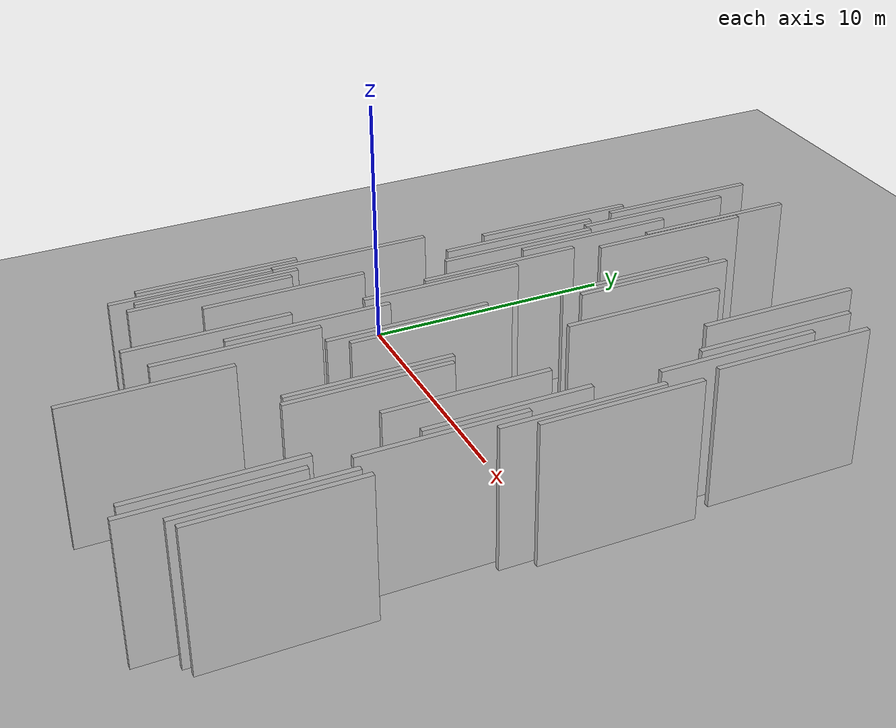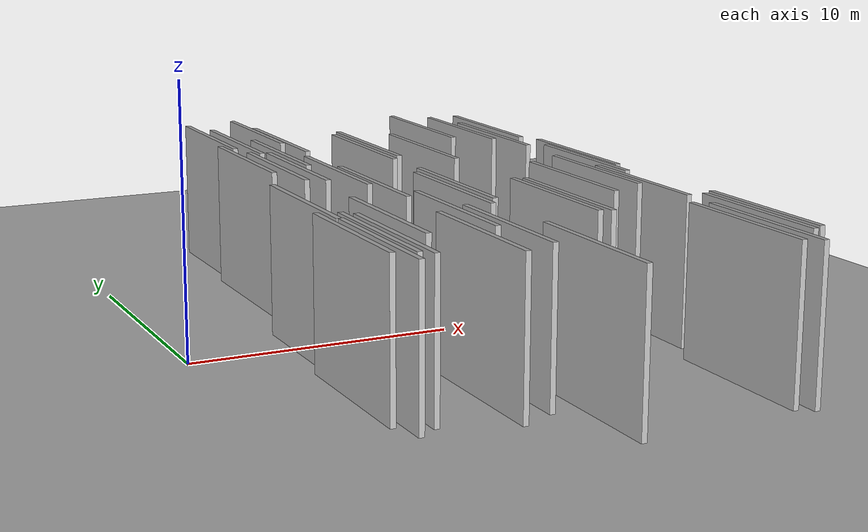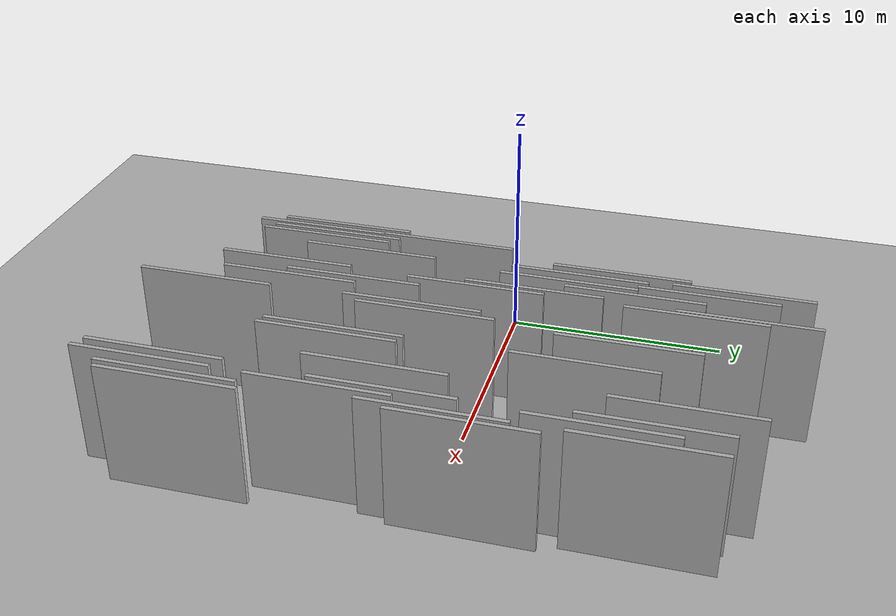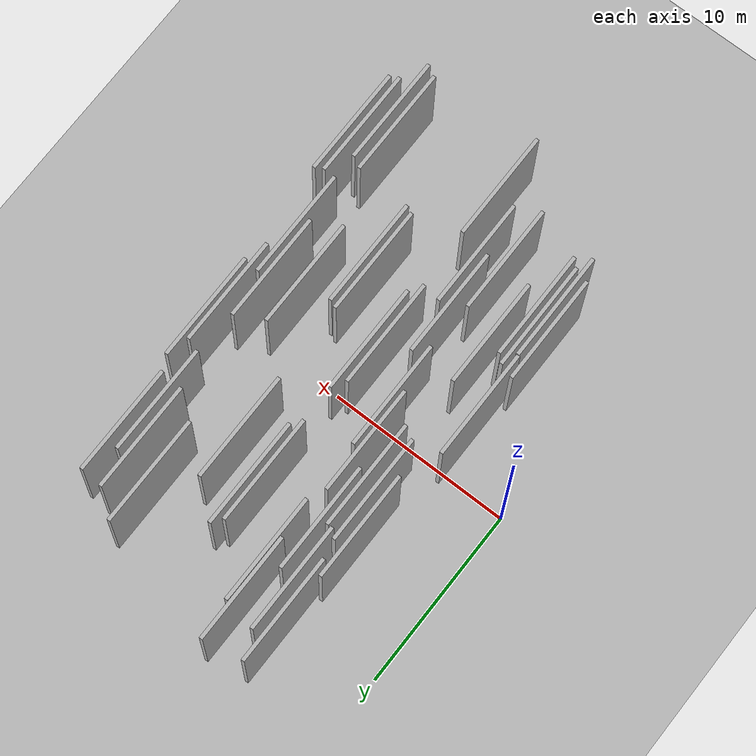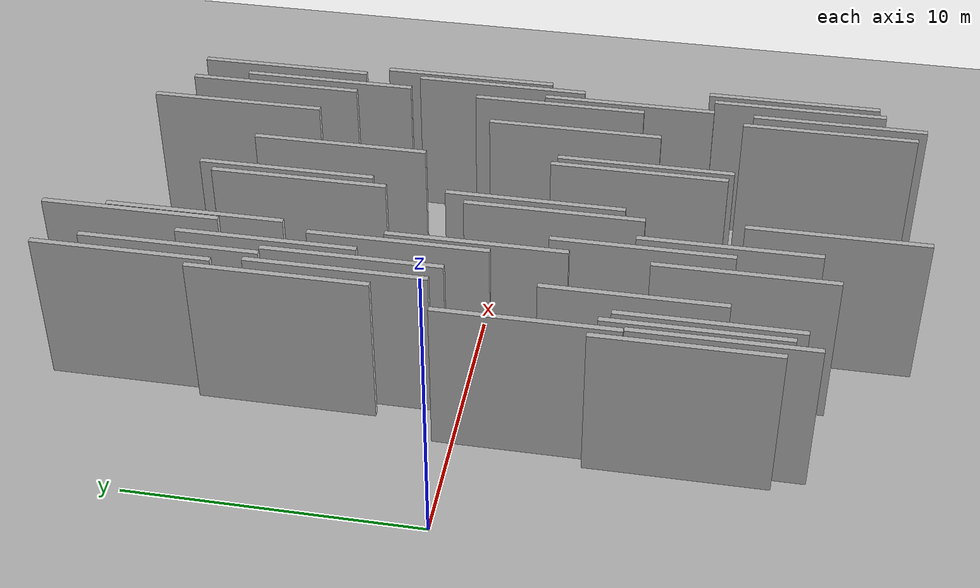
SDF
<?xml version="1.0" encoding="utf-8"?>

<sdf version="1.6">

   <world name="default">

      <gui fullscreen="0">

         <camera name="user_camera">

            <pose>-15 0 4.57585 0 0 0</pose>

            <view_controller>orbit</view_controller>

         </camera>

      </gui>

      <scene>

         <sky>

           <clouds>

             <speed>12</speed>

           </clouds>

         </sky>

         <ambient>0.4 0.4 0.4 1</ambient>

         <background>0.7 0.7 0.7 1</background>

         <shadows>1</shadows>

      </scene>

      <gravity>0 0 -9.8066</gravity>

      <magnetic_field>6e-06 2.3e-05 -4.2e-05</magnetic_field>

      <physics default="0" name="default_physics" type="ode">

         <ode>

            <solver>

               <type>quick</type>

               <iters>10</iters>

               <sor>1.0</sor>

               <use_dynamic_moi_rescaling>0</use_dynamic_moi_rescaling>

            </solver>

            <constraints>

               <cfm>0</cfm>

               <erp>0.2</erp>

               <contact_max_correcting_vel>100</contact_max_correcting_vel>

               <contact_surface_layer>0.001</contact_surface_layer>

            </constraints>

         </ode>

         <max_step_size>0.004</max_step_size>

         <real_time_factor>1</real_time_factor>

         <real_time_update_rate>250</real_time_update_rate>

      </physics>

      <light name="sun" type="directional">

         <cast_shadows>1</cast_shadows>

         <pose>0 0 10 0 0 0</pose>

         <diffuse>0.8 0.8 0.8 1</diffuse>

         <specular>0.2 0.2 0.2 1</specular>

         <attenuation>

            <range>1000</range>

            <constant>0.9</constant>

            <linear>0.01</linear>

            <quadratic>0.001</quadratic>

         </attenuation>

         <direction>-0.5 0.1 -0.9</direction>

      </light>

      <include>

         <name>ground_plane_1</name>

         <uri>model://HANNAS_ground_plane</uri>

         <pose>0 0 0  0 0 0</pose>

      </include>

      <include>

         <name>ground_plane_2</name>

         <uri>model://HANNAS_ground_plane</uri>

         <pose>100 0 0  0 0 0</pose>

      </include>

      <model name="HANNAS_wall_1">

         <static>1</static>

         <pose frame="">12.1451 -5.1813 0.0 0.000000 0.000000 1.570796</pose>

         <link name="link">

            <pose frame="">0 0 3.00 0 0 0</pose>

            <collision name="collision">

               <geometry>

                  <box>

                     <size>6.00 0.2 6.00</size>

                  </box>

               </geometry>

               <max_contacts>10</max_contacts>

               <surface>

                  <contact>

                     <ode/>

                  </contact>

                  <bounce/>

                  <friction>

                     <torsional>

                        <ode/>

                     </torsional>

                     <ode/>

                  </friction>

               </surface>

            </collision>

            <visual name="visual">

               <cast_shadows>0</cast_shadows>

               <geometry>

                  <box>

                     <size>6.00 0.2 6.00</size>

                  </box>

               </geometry>

               <material>

                  <script>

                     <uri>model://HANNAS_wall/materials/scripts</uri>

                     <uri>model://HANNAS_wall/materials/textures</uri>

                     <name>vrc/HANNAS_wall</name>

                  </script>

               </material>

            </visual>

            <self_collide>0</self_collide>

            <enable_wind>0</enable_wind>

            <kinematic>0</kinematic>

         </link>

      </model>

      <model name="HANNAS_wall_2">

         <static>1</static>

         <pose frame="">15.1413 -11.2766 0.0 0.000000 0.000000 1.570796</pose>

         <link name="link">

            <pose frame="">0 0 3.00 0 0 0</pose>

            <collision name="collision">

               <geometry>

                  <box>

                     <size>6.00 0.2 6.00</size>

                  </box>

               </geometry>

               <max_contacts>10</max_contacts>

               <surface>

                  <contact>

                     <ode/>

                  </contact>

                  <bounce/>

                  <friction>

                     <torsional>

                        <ode/>

                     </torsional>

                     <ode/>

                  </friction>

               </surface>

            </collision>

            <visual name="visual">

               <cast_shadows>0</cast_shadows>

               <geometry>

                  <box>

                     <size>6.00 0.2 6.00</size>

                  </box>

               </geometry>

               <material>

                  <script>

                     <uri>model://HANNAS_wall/materials/scripts</uri>

                     <uri>model://HANNAS_wall/materials/textures</uri>

                     <name>vrc/HANNAS_wall</name>

                  </script>

               </material>

            </visual>

            <self_collide>0</self_collide>

            <enable_wind>0</enable_wind>

            <kinematic>0</kinematic>

         </link>

      </model>

      <model name="HANNAS_wall_3">

         <static>1</static>

         <pose frame="">13.6531 9.5082 0.0 0.000000 0.000000 1.570796</pose>

         <link name="link">

            <pose frame="">0 0 3.00 0 0 0</pose>

            <collision name="collision">

               <geometry>

                  <box>

                     <size>6.00 0.2 6.00</size>

                  </box>

               </geometry>

               <max_contacts>10</max_contacts>

               <surface>

                  <contact>

                     <ode/>

                  </contact>

                  <bounce/>

                  <friction>

                     <torsional>

                        <ode/>

                     </torsional>

                     <ode/>

                  </friction>

               </surface>

            </collision>

            <visual name="visual">

               <cast_shadows>0</cast_shadows>

               <geometry>

                  <box>

                     <size>6.00 0.2 6.00</size>

                  </box>

               </geometry>

               <material>

                  <script>

                     <uri>model://HANNAS_wall/materials/scripts</uri>

                     <uri>model://HANNAS_wall/materials/textures</uri>

                     <name>vrc/HANNAS_wall</name>

                  </script>

               </material>

            </visual>

            <self_collide>0</self_collide>

            <enable_wind>0</enable_wind>

            <kinematic>0</kinematic>

         </link>

      </model>

      <model name="HANNAS_wall_4">

         <static>1</static>

         <pose frame="">11.6642 5.2979 0.0 0.000000 0.000000 1.570796</pose>

         <link name="link">

            <pose frame="">0 0 3.00 0 0 0</pose>

            <collision name="collision">

               <geometry>

                  <box>

                     <size>6.00 0.2 6.00</size>

                  </box>

               </geometry>

               <max_contacts>10</max_contacts>

               <surface>

                  <contact>

                     <ode/>

                  </contact>

                  <bounce/>

                  <friction>

                     <torsional>

                        <ode/>

                     </torsional>

                     <ode/>

                  </friction>

               </surface>

            </collision>

            <visual name="visual">

               <cast_shadows>0</cast_shadows>

               <geometry>

                  <box>

                     <size>6.00 0.2 6.00</size>

                  </box>

               </geometry>

               <material>

                  <script>

                     <uri>model://HANNAS_wall/materials/scripts</uri>

                     <uri>model://HANNAS_wall/materials/textures</uri>

                     <name>vrc/HANNAS_wall</name>

                  </script>

               </material>

            </visual>

            <self_collide>0</self_collide>

            <enable_wind>0</enable_wind>

            <kinematic>0</kinematic>

         </link>

      </model>

      <model name="HANNAS_wall_5">

         <static>1</static>

         <pose frame="">9.4939 6.2133 0.0 0.000000 0.000000 1.570796</pose>

         <link name="link">

            <pose frame="">0 0 3.00 0 0 0</pose>

            <collision name="collision">

               <geometry>

                  <box>

                     <size>6.00 0.2 6.00</size>

                  </box>

               </geometry>

               <max_contacts>10</max_contacts>

               <surface>

                  <contact>

                     <ode/>

                  </contact>

                  <bounce/>

                  <friction>

                     <torsional>

                        <ode/>

                     </torsional>

                     <ode/>

                  </friction>

               </surface>

            </collision>

            <visual name="visual">

               <cast_shadows>0</cast_shadows>

               <geometry>

                  <box>

                     <size>6.00 0.2 6.00</size>

                  </box>

               </geometry>

               <material>

                  <script>

                     <uri>model://HANNAS_wall/materials/scripts</uri>

                     <uri>model://HANNAS_wall/materials/textures</uri>

                     <name>vrc/HANNAS_wall</name>

                  </script>

               </material>

            </visual>

            <self_collide>0</self_collide>

            <enable_wind>0</enable_wind>

            <kinematic>0</kinematic>

         </link>

      </model>

      <model name="HANNAS_wall_6">

         <static>1</static>

         <pose frame="">3.1000 -7.3563 0.0 0.000000 0.000000 1.570796</pose>

         <link name="link">

            <pose frame="">0 0 3.00 0 0 0</pose>

            <collision name="collision">

               <geometry>

                  <box>

                     <size>6.00 0.2 6.00</size>

                  </box>

               </geometry>

               <max_contacts>10</max_contacts>

               <surface>

                  <contact>

                     <ode/>

                  </contact>

                  <bounce/>

                  <friction>

                     <torsional>

                        <ode/>

                     </torsional>

                     <ode/>

                  </friction>

               </surface>

            </collision>

            <visual name="visual">

               <cast_shadows>0</cast_shadows>

               <geometry>

                  <box>

                     <size>6.00 0.2 6.00</size>

                  </box>

               </geometry>

               <material>

                  <script>

                     <uri>model://HANNAS_wall/materials/scripts</uri>

                     <uri>model://HANNAS_wall/materials/textures</uri>

                     <name>vrc/HANNAS_wall</name>

                  </script>

               </material>

            </visual>

            <self_collide>0</self_collide>

            <enable_wind>0</enable_wind>

            <kinematic>0</kinematic>

         </link>

      </model>

      <model name="HANNAS_wall_7">

         <static>1</static>

         <pose frame="">4.2803 -7.9696 0.0 0.000000 0.000000 1.570796</pose>

         <link name="link">

            <pose frame="">0 0 3.00 0 0 0</pose>

            <collision name="collision">

               <geometry>

                  <box>

                     <size>6.00 0.2 6.00</size>

                  </box>

               </geometry>

               <max_contacts>10</max_contacts>

               <surface>

                  <contact>

                     <ode/>

                  </contact>

                  <bounce/>

                  <friction>

                     <torsional>

                        <ode/>

                     </torsional>

                     <ode/>

                  </friction>

               </surface>

            </collision>

            <visual name="visual">

               <cast_shadows>0</cast_shadows>

               <geometry>

                  <box>

                     <size>6.00 0.2 6.00</size>

                  </box>

               </geometry>

               <material>

                  <script>

                     <uri>model://HANNAS_wall/materials/scripts</uri>

                     <uri>model://HANNAS_wall/materials/textures</uri>

                     <name>vrc/HANNAS_wall</name>

                  </script>

               </material>

            </visual>

            <self_collide>0</self_collide>

            <enable_wind>0</enable_wind>

            <kinematic>0</kinematic>

         </link>

      </model>

      <model name="HANNAS_wall_8">

         <static>1</static>

         <pose frame="">16.1915 8.3864 0.0 0.000000 0.000000 1.570796</pose>

         <link name="link">

            <pose frame="">0 0 3.00 0 0 0</pose>

            <collision name="collision">

               <geometry>

                  <box>

                     <size>6.00 0.2 6.00</size>

                  </box>

               </geometry>

               <max_contacts>10</max_contacts>

               <surface>

                  <contact>

                     <ode/>

                  </contact>

                  <bounce/>

                  <friction>

                     <torsional>

                        <ode/>

                     </torsional>

                     <ode/>

                  </friction>

               </surface>

            </collision>

            <visual name="visual">

               <cast_shadows>0</cast_shadows>

               <geometry>

                  <box>

                     <size>6.00 0.2 6.00</size>

                  </box>

               </geometry>

               <material>

                  <script>

                     <uri>model://HANNAS_wall/materials/scripts</uri>

                     <uri>model://HANNAS_wall/materials/textures</uri>

                     <name>vrc/HANNAS_wall</name>

                  </script>

               </material>

            </visual>

            <self_collide>0</self_collide>

            <enable_wind>0</enable_wind>

            <kinematic>0</kinematic>

         </link>

      </model>

      <model name="HANNAS_wall_9">

         <static>1</static>

         <pose frame="">4.9220 3.8574 0.0 0.000000 0.000000 1.570796</pose>

         <link name="link">

            <pose frame="">0 0 3.00 0 0 0</pose>

            <collision name="collision">

               <geometry>

                  <box>

                     <size>6.00 0.2 6.00</size>

                  </box>

               </geometry>

               <max_contacts>10</max_contacts>

               <surface>

                  <contact>

                     <ode/>

                  </contact>

                  <bounce/>

                  <friction>

                     <torsional>

                        <ode/>

                     </torsional>

                     <ode/>

                  </friction>

               </surface>

            </collision>

            <visual name="visual">

               <cast_shadows>0</cast_shadows>

               <geometry>

                  <box>

                     <size>6.00 0.2 6.00</size>

                  </box>

               </geometry>

               <material>

                  <script>

                     <uri>model://HANNAS_wall/materials/scripts</uri>

                     <uri>model://HANNAS_wall/materials/textures</uri>

                     <name>vrc/HANNAS_wall</name>

                  </script>

               </material>

            </visual>

            <self_collide>0</self_collide>

            <enable_wind>0</enable_wind>

            <kinematic>0</kinematic>

         </link>

      </model>

      <model name="HANNAS_wall_10">

         <static>1</static>

         <pose frame="">3.5389 -8.4441 0.0 0.000000 0.000000 1.570796</pose>

         <link name="link">

            <pose frame="">0 0 3.00 0 0 0</pose>

            <collision name="collision">

               <geometry>

                  <box>

                     <size>6.00 0.2 6.00</size>

                  </box>

               </geometry>

               <max_contacts>10</max_contacts>

               <surface>

                  <contact>

                     <ode/>

                  </contact>

                  <bounce/>

                  <friction>

                     <torsional>

                        <ode/>

                     </torsional>

                     <ode/>

                  </friction>

               </surface>

            </collision>

            <visual name="visual">

               <cast_shadows>0</cast_shadows>

               <geometry>

                  <box>

                     <size>6.00 0.2 6.00</size>

                  </box>

               </geometry>

               <material>

                  <script>

                     <uri>model://HANNAS_wall/materials/scripts</uri>

                     <uri>model://HANNAS_wall/materials/textures</uri>

                     <name>vrc/HANNAS_wall</name>

                  </script>

               </material>

            </visual>

            <self_collide>0</self_collide>

            <enable_wind>0</enable_wind>

            <kinematic>0</kinematic>

         </link>

      </model>

      <model name="HANNAS_wall_11">

         <static>1</static>

         <pose frame="">5.5867 3.4887 0.0 0.000000 0.000000 1.570796</pose>

         <link name="link">

            <pose frame="">0 0 3.00 0 0 0</pose>

            <collision name="collision">

               <geometry>

                  <box>

                     <size>6.00 0.2 6.00</size>

                  </box>

               </geometry>

               <max_contacts>10</max_contacts>

               <surface>

                  <contact>

                     <ode/>

                  </contact>

                  <bounce/>

                  <friction>

                     <torsional>

                        <ode/>

                     </torsional>

                     <ode/>

                  </friction>

               </surface>

            </collision>

            <visual name="visual">

               <cast_shadows>0</cast_shadows>

               <geometry>

                  <box>

                     <size>6.00 0.2 6.00</size>

                  </box>

               </geometry>

               <material>

                  <script>

                     <uri>model://HANNAS_wall/materials/scripts</uri>

                     <uri>model://HANNAS_wall/materials/textures</uri>

                     <name>vrc/HANNAS_wall</name>

                  </script>

               </material>

            </visual>

            <self_collide>0</self_collide>

            <enable_wind>0</enable_wind>

            <kinematic>0</kinematic>

         </link>

      </model>

      <model name="HANNAS_wall_12">

         <static>1</static>

         <pose frame="">14.9917 8.4810 0.0 0.000000 0.000000 1.570796</pose>

         <link name="link">

            <pose frame="">0 0 3.00 0 0 0</pose>

            <collision name="collision">

               <geometry>

                  <box>

                     <size>6.00 0.2 6.00</size>

                  </box>

               </geometry>

               <max_contacts>10</max_contacts>

               <surface>

                  <contact>

                     <ode/>

                  </contact>

                  <bounce/>

                  <friction>

                     <torsional>

                        <ode/>

                     </torsional>

                     <ode/>

                  </friction>

               </surface>

            </collision>

            <visual name="visual">

               <cast_shadows>0</cast_shadows>

               <geometry>

                  <box>

                     <size>6.00 0.2 6.00</size>

                  </box>

               </geometry>

               <material>

                  <script>

                     <uri>model://HANNAS_wall/materials/scripts</uri>

                     <uri>model://HANNAS_wall/materials/textures</uri>

                     <name>vrc/HANNAS_wall</name>

                  </script>

               </material>

            </visual>

            <self_collide>0</self_collide>

            <enable_wind>0</enable_wind>

            <kinematic>0</kinematic>

         </link>

      </model>

      <model name="HANNAS_wall_13">

         <static>1</static>

         <pose frame="">9.9165 6.7411 0.0 0.000000 0.000000 1.570796</pose>

         <link name="link">

            <pose frame="">0 0 3.00 0 0 0</pose>

            <collision name="collision">

               <geometry>

                  <box>

                     <size>6.00 0.2 6.00</size>

                  </box>

               </geometry>

               <max_contacts>10</max_contacts>

               <surface>

                  <contact>

                     <ode/>

                  </contact>

                  <bounce/>

                  <friction>

                     <torsional>

                        <ode/>

                     </torsional>

                     <ode/>

                  </friction>

               </surface>

            </collision>

            <visual name="visual">

               <cast_shadows>0</cast_shadows>

               <geometry>

                  <box>

                     <size>6.00 0.2 6.00</size>

                  </box>

               </geometry>

               <material>

                  <script>

                     <uri>model://HANNAS_wall/materials/scripts</uri>

                     <uri>model://HANNAS_wall/materials/textures</uri>

                     <name>vrc/HANNAS_wall</name>

                  </script>

               </material>

            </visual>

            <self_collide>0</self_collide>

            <enable_wind>0</enable_wind>

            <kinematic>0</kinematic>

         </link>

      </model>

      <model name="HANNAS_wall_14">

         <static>1</static>

         <pose frame="">6.8452 11.2171 0.0 0.000000 0.000000 1.570796</pose>

         <link name="link">

            <pose frame="">0 0 3.00 0 0 0</pose>

            <collision name="collision">

               <geometry>

                  <box>

                     <size>6.00 0.2 6.00</size>

                  </box>

               </geometry>

               <max_contacts>10</max_contacts>

               <surface>

                  <contact>

                     <ode/>

                  </contact>

                  <bounce/>

                  <friction>

                     <torsional>

                        <ode/>

                     </torsional>

                     <ode/>

                  </friction>

               </surface>

            </collision>

            <visual name="visual">

               <cast_shadows>0</cast_shadows>

               <geometry>

                  <box>

                     <size>6.00 0.2 6.00</size>

                  </box>

               </geometry>

               <material>

                  <script>

                     <uri>model://HANNAS_wall/materials/scripts</uri>

                     <uri>model://HANNAS_wall/materials/textures</uri>

                     <name>vrc/HANNAS_wall</name>

                  </script>

               </material>

            </visual>

            <self_collide>0</self_collide>

            <enable_wind>0</enable_wind>

            <kinematic>0</kinematic>

         </link>

      </model>

      <model name="HANNAS_wall_15">

         <static>1</static>

         <pose frame="">16.8674 -9.9732 0.0 0.000000 0.000000 1.570796</pose>

         <link name="link">

            <pose frame="">0 0 3.00 0 0 0</pose>

            <collision name="collision">

               <geometry>

                  <box>

                     <size>6.00 0.2 6.00</size>

                  </box>

               </geometry>

               <max_contacts>10</max_contacts>

               <surface>

                  <contact>

                     <ode/>

                  </contact>

                  <bounce/>

                  <friction>

                     <torsional>

                        <ode/>

                     </torsional>

                     <ode/>

                  </friction>

               </surface>

            </collision>

            <visual name="visual">

               <cast_shadows>0</cast_shadows>

               <geometry>

                  <box>

                     <size>6.00 0.2 6.00</size>

                  </box>

               </geometry>

               <material>

                  <script>

                     <uri>model://HANNAS_wall/materials/scripts</uri>

                     <uri>model://HANNAS_wall/materials/textures</uri>

                     <name>vrc/HANNAS_wall</name>

                  </script>

               </material>

            </visual>

            <self_collide>0</self_collide>

            <enable_wind>0</enable_wind>

            <kinematic>0</kinematic>

         </link>

      </model>

      <model name="HANNAS_wall_16">

         <static>1</static>

         <pose frame="">7.6171 -5.5608 0.0 0.000000 0.000000 1.570796</pose>

         <link name="link">

            <pose frame="">0 0 3.00 0 0 0</pose>

            <collision name="collision">

               <geometry>

                  <box>

                     <size>6.00 0.2 6.00</size>

                  </box>

               </geometry>

               <max_contacts>10</max_contacts>

               <surface>

                  <contact>

                     <ode/>

                  </contact>

                  <bounce/>

                  <friction>

                     <torsional>

                        <ode/>

                     </torsional>

                     <ode/>

                  </friction>

               </surface>

            </collision>

            <visual name="visual">

               <cast_shadows>0</cast_shadows>

               <geometry>

                  <box>

                     <size>6.00 0.2 6.00</size>

                  </box>

               </geometry>

               <material>

                  <script>

                     <uri>model://HANNAS_wall/materials/scripts</uri>

                     <uri>model://HANNAS_wall/materials/textures</uri>

                     <name>vrc/HANNAS_wall</name>

                  </script>

               </material>

            </visual>

            <self_collide>0</self_collide>

            <enable_wind>0</enable_wind>

            <kinematic>0</kinematic>

         </link>

      </model>

      <model name="HANNAS_wall_17">

         <static>1</static>

         <pose frame="">6.0229 6.4085 0.0 0.000000 0.000000 1.570796</pose>

         <link name="link">

            <pose frame="">0 0 3.00 0 0 0</pose>

            <collision name="collision">

               <geometry>

                  <box>

                     <size>6.00 0.2 6.00</size>

                  </box>

               </geometry>

               <max_contacts>10</max_contacts>

               <surface>

                  <contact>

                     <ode/>

                  </contact>

                  <bounce/>

                  <friction>

                     <torsional>

                        <ode/>

                     </torsional>

                     <ode/>

                  </friction>

               </surface>

            </collision>

            <visual name="visual">

               <cast_shadows>0</cast_shadows>

               <geometry>

                  <box>

                     <size>6.00 0.2 6.00</size>

                  </box>

               </geometry>

               <material>

                  <script>

                     <uri>model://HANNAS_wall/materials/scripts</uri>

                     <uri>model://HANNAS_wall/materials/textures</uri>

                     <name>vrc/HANNAS_wall</name>

                  </script>

               </material>

            </visual>

            <self_collide>0</self_collide>

            <enable_wind>0</enable_wind>

            <kinematic>0</kinematic>

         </link>

      </model>

      <model name="HANNAS_wall_18">

         <static>1</static>

         <pose frame="">8.1108 -8.3036 0.0 0.000000 0.000000 1.570796</pose>

         <link name="link">

            <pose frame="">0 0 3.00 0 0 0</pose>

            <collision name="collision">

               <geometry>

                  <box>

                     <size>6.00 0.2 6.00</size>

                  </box>

               </geometry>

               <max_contacts>10</max_contacts>

               <surface>

                  <contact>

                     <ode/>

                  </contact>

                  <bounce/>

                  <friction>

                     <torsional>

                        <ode/>

                     </torsional>

                     <ode/>

                  </friction>

               </surface>

            </collision>

            <visual name="visual">

               <cast_shadows>0</cast_shadows>

               <geometry>

                  <box>

                     <size>6.00 0.2 6.00</size>

                  </box>

               </geometry>

               <material>

                  <script>

                     <uri>model://HANNAS_wall/materials/scripts</uri>

                     <uri>model://HANNAS_wall/materials/textures</uri>

                     <name>vrc/HANNAS_wall</name>

                  </script>

               </material>

            </visual>

            <self_collide>0</self_collide>

            <enable_wind>0</enable_wind>

            <kinematic>0</kinematic>

         </link>

      </model>

      <model name="HANNAS_wall_19">

         <static>1</static>

         <pose frame="">5.3103 9.4407 0.0 0.000000 0.000000 1.570796</pose>

         <link name="link">

            <pose frame="">0 0 3.00 0 0 0</pose>

            <collision name="collision">

               <geometry>

                  <box>

                     <size>6.00 0.2 6.00</size>

                  </box>

               </geometry>

               <max_contacts>10</max_contacts>

               <surface>

                  <contact>

                     <ode/>

                  </contact>

                  <bounce/>

                  <friction>

                     <torsional>

                        <ode/>

                     </torsional>

                     <ode/>

                  </friction>

               </surface>

            </collision>

            <visual name="visual">

               <cast_shadows>0</cast_shadows>

               <geometry>

                  <box>

                     <size>6.00 0.2 6.00</size>

                  </box>

               </geometry>

               <material>

                  <script>

                     <uri>model://HANNAS_wall/materials/scripts</uri>

                     <uri>model://HANNAS_wall/materials/textures</uri>

                     <name>vrc/HANNAS_wall</name>

                  </script>

               </material>

            </visual>

            <self_collide>0</self_collide>

            <enable_wind>0</enable_wind>

            <kinematic>0</kinematic>

         </link>

      </model>

      <model name="HANNAS_wall_20">

         <static>1</static>

         <pose frame="">16.2411 0.4192 0.0 0.000000 0.000000 1.570796</pose>

         <link name="link">

            <pose frame="">0 0 3.00 0 0 0</pose>

            <collision name="collision">

               <geometry>

                  <box>

                     <size>6.00 0.2 6.00</size>

                  </box>

               </geometry>

               <max_contacts>10</max_contacts>

               <surface>

                  <contact>

                     <ode/>

                  </contact>

                  <bounce/>

                  <friction>

                     <torsional>

                        <ode/>

                     </torsional>

                     <ode/>

                  </friction>

               </surface>

            </collision>

            <visual name="visual">

               <cast_shadows>0</cast_shadows>

               <geometry>

                  <box>

                     <size>6.00 0.2 6.00</size>

                  </box>

               </geometry>

               <material>

                  <script>

                     <uri>model://HANNAS_wall/materials/scripts</uri>

                     <uri>model://HANNAS_wall/materials/textures</uri>

                     <name>vrc/HANNAS_wall</name>

                  </script>

               </material>

            </visual>

            <self_collide>0</self_collide>

            <enable_wind>0</enable_wind>

            <kinematic>0</kinematic>

         </link>

      </model>

      <model name="HANNAS_wall_21">

         <static>1</static>

         <pose frame="">4.7092 10.8443 0.0 0.000000 0.000000 1.570796</pose>

         <link name="link">

            <pose frame="">0 0 3.00 0 0 0</pose>

            <collision name="collision">

               <geometry>

                  <box>

                     <size>6.00 0.2 6.00</size>

                  </box>

               </geometry>

               <max_contacts>10</max_contacts>

               <surface>

                  <contact>

                     <ode/>

                  </contact>

                  <bounce/>

                  <friction>

                     <torsional>

                        <ode/>

                     </torsional>

                     <ode/>

                  </friction>

               </surface>

            </collision>

            <visual name="visual">

               <cast_shadows>0</cast_shadows>

               <geometry>

                  <box>

                     <size>6.00 0.2 6.00</size>

                  </box>

               </geometry>

               <material>

                  <script>

                     <uri>model://HANNAS_wall/materials/scripts</uri>

                     <uri>model://HANNAS_wall/materials/textures</uri>

                     <name>vrc/HANNAS_wall</name>

                  </script>

               </material>

            </visual>

            <self_collide>0</self_collide>

            <enable_wind>0</enable_wind>

            <kinematic>0</kinematic>

         </link>

      </model>

      <model name="HANNAS_wall_22">

         <static>1</static>

         <pose frame="">15.5327 6.6128 0.0 0.000000 0.000000 1.570796</pose>

         <link name="link">

            <pose frame="">0 0 3.00 0 0 0</pose>

            <collision name="collision">

               <geometry>

                  <box>

                     <size>6.00 0.2 6.00</size>

                  </box>

               </geometry>

               <max_contacts>10</max_contacts>

               <surface>

                  <contact>

                     <ode/>

                  </contact>

                  <bounce/>

                  <friction>

                     <torsional>

                        <ode/>

                     </torsional>

                     <ode/>

                  </friction>

               </surface>

            </collision>

            <visual name="visual">

               <cast_shadows>0</cast_shadows>

               <geometry>

                  <box>

                     <size>6.00 0.2 6.00</size>

                  </box>

               </geometry>

               <material>

                  <script>

                     <uri>model://HANNAS_wall/materials/scripts</uri>

                     <uri>model://HANNAS_wall/materials/textures</uri>

                     <name>vrc/HANNAS_wall</name>

                  </script>

               </material>

            </visual>

            <self_collide>0</self_collide>

            <enable_wind>0</enable_wind>

            <kinematic>0</kinematic>

         </link>

      </model>

      <model name="HANNAS_wall_23">

         <static>1</static>

         <pose frame="">15.7235 -11.5997 0.0 0.000000 0.000000 1.570796</pose>

         <link name="link">

            <pose frame="">0 0 3.00 0 0 0</pose>

            <collision name="collision">

               <geometry>

                  <box>

                     <size>6.00 0.2 6.00</size>

                  </box>

               </geometry>

               <max_contacts>10</max_contacts>

               <surface>

                  <contact>

                     <ode/>

                  </contact>

                  <bounce/>

                  <friction>

                     <torsional>

                        <ode/>

                     </torsional>

                     <ode/>

                  </friction>

               </surface>

            </collision>

            <visual name="visual">

               <cast_shadows>0</cast_shadows>

               <geometry>

                  <box>

                     <size>6.00 0.2 6.00</size>

                  </box>

               </geometry>

               <material>

                  <script>

                     <uri>model://HANNAS_wall/materials/scripts</uri>

                     <uri>model://HANNAS_wall/materials/textures</uri>

                     <name>vrc/HANNAS_wall</name>

                  </script>

               </material>

            </visual>

            <self_collide>0</self_collide>

            <enable_wind>0</enable_wind>

            <kinematic>0</kinematic>

         </link>

      </model>

      <model name="HANNAS_wall_24">

         <static>1</static>

         <pose frame="">16.4300 -10.1939 0.0 0.000000 0.000000 1.570796</pose>

         <link name="link">

            <pose frame="">0 0 3.00 0 0 0</pose>

            <collision name="collision">

               <geometry>

                  <box>

                     <size>6.00 0.2 6.00</size>

                  </box>

               </geometry>

               <max_contacts>10</max_contacts>

               <surface>

                  <contact>

                     <ode/>

                  </contact>

                  <bounce/>

                  <friction>

                     <torsional>

                        <ode/>

                     </torsional>

                     <ode/>

                  </friction>

               </surface>

            </collision>

            <visual name="visual">

               <cast_shadows>0</cast_shadows>

               <geometry>

                  <box>

                     <size>6.00 0.2 6.00</size>

                  </box>

               </geometry>

               <material>

                  <script>

                     <uri>model://HANNAS_wall/materials/scripts</uri>

                     <uri>model://HANNAS_wall/materials/textures</uri>

                     <name>vrc/HANNAS_wall</name>

                  </script>

               </material>

            </visual>

            <self_collide>0</self_collide>

            <enable_wind>0</enable_wind>

            <kinematic>0</kinematic>

         </link>

      </model>

      <model name="HANNAS_wall_25">

         <static>1</static>

         <pose frame="">6.9919 -0.2852 0.0 0.000000 0.000000 1.570796</pose>

         <link name="link">

            <pose frame="">0 0 3.00 0 0 0</pose>

            <collision name="collision">

               <geometry>

                  <box>

                     <size>6.00 0.2 6.00</size>

                  </box>

               </geometry>

               <max_contacts>10</max_contacts>

               <surface>

                  <contact>

                     <ode/>

                  </contact>

                  <bounce/>

                  <friction>

                     <torsional>

                        <ode/>

                     </torsional>

                     <ode/>

                  </friction>

               </surface>

            </collision>

            <visual name="visual">

               <cast_shadows>0</cast_shadows>

               <geometry>

                  <box>

                     <size>6.00 0.2 6.00</size>

                  </box>

               </geometry>

               <material>

                  <script>

                     <uri>model://HANNAS_wall/materials/scripts</uri>

                     <uri>model://HANNAS_wall/materials/textures</uri>

                     <name>vrc/HANNAS_wall</name>

                  </script>

               </material>

            </visual>

            <self_collide>0</self_collide>

            <enable_wind>0</enable_wind>

            <kinematic>0</kinematic>

         </link>

      </model>

      <model name="HANNAS_wall_26">

         <static>1</static>

         <pose frame="">16.5880 1.6347 0.0 0.000000 0.000000 1.570796</pose>

         <link name="link">

            <pose frame="">0 0 3.00 0 0 0</pose>

            <collision name="collision">

               <geometry>

                  <box>

                     <size>6.00 0.2 6.00</size>

                  </box>

               </geometry>

               <max_contacts>10</max_contacts>

               <surface>

                  <contact>

                     <ode/>

                  </contact>

                  <bounce/>

                  <friction>

                     <torsional>

                        <ode/>

                     </torsional>

                     <ode/>

                  </friction>

               </surface>

            </collision>

            <visual name="visual">

               <cast_shadows>0</cast_shadows>

               <geometry>

                  <box>

                     <size>6.00 0.2 6.00</size>

                  </box>

               </geometry>

               <material>

                  <script>

                     <uri>model://HANNAS_wall/materials/scripts</uri>

                     <uri>model://HANNAS_wall/materials/textures</uri>

                     <name>vrc/HANNAS_wall</name>

                  </script>

               </material>

            </visual>

            <self_collide>0</self_collide>

            <enable_wind>0</enable_wind>

            <kinematic>0</kinematic>

         </link>

      </model>

      <model name="HANNAS_wall_27">

         <static>1</static>

         <pose frame="">6.8356 -8.9020 0.0 0.000000 0.000000 1.570796</pose>

         <link name="link">

            <pose frame="">0 0 3.00 0 0 0</pose>

            <collision name="collision">

               <geometry>

                  <box>

                     <size>6.00 0.2 6.00</size>

                  </box>

               </geometry>

               <max_contacts>10</max_contacts>

               <surface>

                  <contact>

                     <ode/>

                  </contact>

                  <bounce/>

                  <friction>

                     <torsional>

                        <ode/>

                     </torsional>

                     <ode/>

                  </friction>

               </surface>

            </collision>

            <visual name="visual">

               <cast_shadows>0</cast_shadows>

               <geometry>

                  <box>

                     <size>6.00 0.2 6.00</size>

                  </box>

               </geometry>

               <material>

                  <script>

                     <uri>model://HANNAS_wall/materials/scripts</uri>

                     <uri>model://HANNAS_wall/materials/textures</uri>

                     <name>vrc/HANNAS_wall</name>

                  </script>

               </material>

            </visual>

            <self_collide>0</self_collide>

            <enable_wind>0</enable_wind>

            <kinematic>0</kinematic>

         </link>

      </model>

      <model name="HANNAS_wall_28">

         <static>1</static>

         <pose frame="">5.1727 -5.5485 0.0 0.000000 0.000000 1.570796</pose>

         <link name="link">

            <pose frame="">0 0 3.00 0 0 0</pose>

            <collision name="collision">

               <geometry>

                  <box>

                     <size>6.00 0.2 6.00</size>

                  </box>

               </geometry>

               <max_contacts>10</max_contacts>

               <surface>

                  <contact>

                     <ode/>

                  </contact>

                  <bounce/>

                  <friction>

                     <torsional>

                        <ode/>

                     </torsional>

                     <ode/>

                  </friction>

               </surface>

            </collision>

            <visual name="visual">

               <cast_shadows>0</cast_shadows>

               <geometry>

                  <box>

                     <size>6.00 0.2 6.00</size>

                  </box>

               </geometry>

               <material>

                  <script>

                     <uri>model://HANNAS_wall/materials/scripts</uri>

                     <uri>model://HANNAS_wall/materials/textures</uri>

                     <name>vrc/HANNAS_wall</name>

                  </script>

               </material>

            </visual>

            <self_collide>0</self_collide>

            <enable_wind>0</enable_wind>

            <kinematic>0</kinematic>

         </link>

      </model>

      <model name="HANNAS_wall_29">

         <static>1</static>

         <pose frame="">9.0745 -2.4983 0.0 0.000000 0.000000 1.570796</pose>

         <link name="link">

            <pose frame="">0 0 3.00 0 0 0</pose>

            <collision name="collision">

               <geometry>

                  <box>

                     <size>6.00 0.2 6.00</size>

                  </box>

               </geometry>

               <max_contacts>10</max_contacts>

               <surface>

                  <contact>

                     <ode/>

                  </contact>

                  <bounce/>

                  <friction>

                     <torsional>

                        <ode/>

                     </torsional>

                     <ode/>

                  </friction>

               </surface>

            </collision>

            <visual name="visual">

               <cast_shadows>0</cast_shadows>

               <geometry>

                  <box>

                     <size>6.00 0.2 6.00</size>

                  </box>

               </geometry>

               <material>

                  <script>

                     <uri>model://HANNAS_wall/materials/scripts</uri>

                     <uri>model://HANNAS_wall/materials/textures</uri>

                     <name>vrc/HANNAS_wall</name>

                  </script>

               </material>

            </visual>

            <self_collide>0</self_collide>

            <enable_wind>0</enable_wind>

            <kinematic>0</kinematic>

         </link>

      </model>

      <model name="HANNAS_wall_30">

         <static>1</static>

         <pose frame="">9.2553 -11.7114 0.0 0.000000 0.000000 1.570796</pose>

         <link name="link">

            <pose frame="">0 0 3.00 0 0 0</pose>

            <collision name="collision">

               <geometry>

                  <box>

                     <size>6.00 0.2 6.00</size>

                  </box>

               </geometry>

               <max_contacts>10</max_contacts>

               <surface>

                  <contact>

                     <ode/>

                  </contact>

                  <bounce/>

                  <friction>

                     <torsional>

                        <ode/>

                     </torsional>

                     <ode/>

                  </friction>

               </surface>

            </collision>

            <visual name="visual">

               <cast_shadows>0</cast_shadows>

               <geometry>

                  <box>

                     <size>6.00 0.2 6.00</size>

                  </box>

               </geometry>

               <material>

                  <script>

                     <uri>model://HANNAS_wall/materials/scripts</uri>

                     <uri>model://HANNAS_wall/materials/textures</uri>

                     <name>vrc/HANNAS_wall</name>

                  </script>

               </material>

            </visual>

            <self_collide>0</self_collide>

            <enable_wind>0</enable_wind>

            <kinematic>0</kinematic>

         </link>

      </model>

      <model name="HANNAS_wall_31">

         <static>1</static>

         <pose frame="">3.4798 -2.4295 0.0 0.000000 0.000000 1.570796</pose>

         <link name="link">

            <pose frame="">0 0 3.00 0 0 0</pose>

            <collision name="collision">

               <geometry>

                  <box>

                     <size>6.00 0.2 6.00</size>

                  </box>

               </geometry>

               <max_contacts>10</max_contacts>

               <surface>

                  <contact>

                     <ode/>

                  </contact>

                  <bounce/>

                  <friction>

                     <torsional>

                        <ode/>

                     </torsional>

                     <ode/>

                  </friction>

               </surface>

            </collision>

            <visual name="visual">

               <cast_shadows>0</cast_shadows>

               <geometry>

                  <box>

                     <size>6.00 0.2 6.00</size>

                  </box>

               </geometry>

               <material>

                  <script>

                     <uri>model://HANNAS_wall/materials/scripts</uri>

                     <uri>model://HANNAS_wall/materials/textures</uri>

                     <name>vrc/HANNAS_wall</name>

                  </script>

               </material>

            </visual>

            <self_collide>0</self_collide>

            <enable_wind>0</enable_wind>

            <kinematic>0</kinematic>

         </link>

      </model>

      <model name="HANNAS_wall_32">

         <static>1</static>

         <pose frame="">15.7734 -4.2202 0.0 0.000000 0.000000 1.570796</pose>

         <link name="link">

            <pose frame="">0 0 3.00 0 0 0</pose>

            <collision name="collision">

               <geometry>

                  <box>

                     <size>6.00 0.2 6.00</size>

                  </box>

               </geometry>

               <max_contacts>10</max_contacts>

               <surface>

                  <contact>

                     <ode/>

                  </contact>

                  <bounce/>

                  <friction>

                     <torsional>

                        <ode/>

                     </torsional>

                     <ode/>

                  </friction>

               </surface>

            </collision>

            <visual name="visual">

               <cast_shadows>0</cast_shadows>

               <geometry>

                  <box>

                     <size>6.00 0.2 6.00</size>

                  </box>

               </geometry>

               <material>

                  <script>

                     <uri>model://HANNAS_wall/materials/scripts</uri>

                     <uri>model://HANNAS_wall/materials/textures</uri>

                     <name>vrc/HANNAS_wall</name>

                  </script>

               </material>

            </visual>

            <self_collide>0</self_collide>

            <enable_wind>0</enable_wind>

            <kinematic>0</kinematic>

         </link>

      </model>

      <model name="HANNAS_wall_33">

         <static>1</static>

         <pose frame="">7.0672 9.0954 0.0 0.000000 0.000000 1.570796</pose>

         <link name="link">

            <pose frame="">0 0 3.00 0 0 0</pose>

            <collision name="collision">

               <geometry>

                  <box>

                     <size>6.00 0.2 6.00</size>

                  </box>

               </geometry>

               <max_contacts>10</max_contacts>

               <surface>

                  <contact>

                     <ode/>

                  </contact>

                  <bounce/>

                  <friction>

                     <torsional>

                        <ode/>

                     </torsional>

                     <ode/>

                  </friction>

               </surface>

            </collision>

            <visual name="visual">

               <cast_shadows>0</cast_shadows>

               <geometry>

                  <box>

                     <size>6.00 0.2 6.00</size>

                  </box>

               </geometry>

               <material>

                  <script>

                     <uri>model://HANNAS_wall/materials/scripts</uri>

                     <uri>model://HANNAS_wall/materials/textures</uri>

                     <name>vrc/HANNAS_wall</name>

                  </script>

               </material>

            </visual>

            <self_collide>0</self_collide>

            <enable_wind>0</enable_wind>

            <kinematic>0</kinematic>

         </link>

      </model>

      <model name="HANNAS_wall_34">

         <static>1</static>

         <pose frame="">13.9080 -2.5341 0.0 0.000000 0.000000 1.570796</pose>

         <link name="link">

            <pose frame="">0 0 3.00 0 0 0</pose>

            <collision name="collision">

               <geometry>

                  <box>

                     <size>6.00 0.2 6.00</size>

                  </box>

               </geometry>

               <max_contacts>10</max_contacts>

               <surface>

                  <contact>

                     <ode/>

                  </contact>

                  <bounce/>

                  <friction>

                     <torsional>

                        <ode/>

                     </torsional>

                     <ode/>

                  </friction>

               </surface>

            </collision>

            <visual name="visual">

               <cast_shadows>0</cast_shadows>

               <geometry>

                  <box>

                     <size>6.00 0.2 6.00</size>

                  </box>

               </geometry>

               <material>

                  <script>

                     <uri>model://HANNAS_wall/materials/scripts</uri>

                     <uri>model://HANNAS_wall/materials/textures</uri>

                     <name>vrc/HANNAS_wall</name>

                  </script>

               </material>

            </visual>

            <self_collide>0</self_collide>

            <enable_wind>0</enable_wind>

            <kinematic>0</kinematic>

         </link>

      </model>

      <model name="HANNAS_wall_35">

         <static>1</static>

         <pose frame="">15.3526 -1.7840 0.0 0.000000 0.000000 1.570796</pose>

         <link name="link">

            <pose frame="">0 0 3.00 0 0 0</pose>

            <collision name="collision">

               <geometry>

                  <box>

                     <size>6.00 0.2 6.00</size>

                  </box>

               </geometry>

               <max_contacts>10</max_contacts>

               <surface>

                  <contact>

                     <ode/>

                  </contact>

                  <bounce/>

                  <friction>

                     <torsional>

                        <ode/>

                     </torsional>

                     <ode/>

                  </friction>

               </surface>

            </collision>

            <visual name="visual">

               <cast_shadows>0</cast_shadows>

               <geometry>

                  <box>

                     <size>6.00 0.2 6.00</size>

                  </box>

               </geometry>

               <material>

                  <script>

                     <uri>model://HANNAS_wall/materials/scripts</uri>

                     <uri>model://HANNAS_wall/materials/textures</uri>

                     <name>vrc/HANNAS_wall</name>

                  </script>

               </material>

            </visual>

            <self_collide>0</self_collide>

            <enable_wind>0</enable_wind>

            <kinematic>0</kinematic>

         </link>

      </model>

      <model name="HANNAS_wall_36">

         <static>1</static>

         <pose frame="">9.5293 -1.8017 0.0 0.000000 0.000000 1.570796</pose>

         <link name="link">

            <pose frame="">0 0 3.00 0 0 0</pose>

            <collision name="collision">

               <geometry>

                  <box>

                     <size>6.00 0.2 6.00</size>

                  </box>

               </geometry>

               <max_contacts>10</max_contacts>

               <surface>

                  <contact>

                     <ode/>

                  </contact>

                  <bounce/>

                  <friction>

                     <torsional>

                        <ode/>

                     </torsional>

                     <ode/>

                  </friction>

               </surface>

            </collision>

            <visual name="visual">

               <cast_shadows>0</cast_shadows>

               <geometry>

                  <box>

                     <size>6.00 0.2 6.00</size>

                  </box>

               </geometry>

               <material>

                  <script>

                     <uri>model://HANNAS_wall/materials/scripts</uri>

                     <uri>model://HANNAS_wall/materials/textures</uri>

                     <name>vrc/HANNAS_wall</name>

                  </script>

               </material>

            </visual>

            <self_collide>0</self_collide>

            <enable_wind>0</enable_wind>

            <kinematic>0</kinematic>

         </link>

      </model>

      <model name="HANNAS_wall_37">

         <static>1</static>

         <pose frame="">4.3381 5.6030 0.0 0.000000 0.000000 1.570796</pose>

         <link name="link">

            <pose frame="">0 0 3.00 0 0 0</pose>

            <collision name="collision">

               <geometry>

                  <box>

                     <size>6.00 0.2 6.00</size>

                  </box>

               </geometry>

               <max_contacts>10</max_contacts>

               <surface>

                  <contact>

                     <ode/>

                  </contact>

                  <bounce/>

                  <friction>

                     <torsional>

                        <ode/>

                     </torsional>

                     <ode/>

                  </friction>

               </surface>

            </collision>

            <visual name="visual">

               <cast_shadows>0</cast_shadows>

               <geometry>

                  <box>

                     <size>6.00 0.2 6.00</size>

                  </box>

               </geometry>

               <material>

                  <script>

                     <uri>model://HANNAS_wall/materials/scripts</uri>

                     <uri>model://HANNAS_wall/materials/textures</uri>

                     <name>vrc/HANNAS_wall</name>

                  </script>

               </material>

            </visual>

            <self_collide>0</self_collide>

            <enable_wind>0</enable_wind>

            <kinematic>0</kinematic>

         </link>

      </model>

      <model name="HANNAS_wall_38">

         <static>1</static>

         <pose frame="">6.6352 2.2000 0.0 0.000000 0.000000 1.570796</pose>

         <link name="link">

            <pose frame="">0 0 3.00 0 0 0</pose>

            <collision name="collision">

               <geometry>

                  <box>

                     <size>6.00 0.2 6.00</size>

                  </box>

               </geometry>

               <max_contacts>10</max_contacts>

               <surface>

                  <contact>

                     <ode/>

                  </contact>

                  <bounce/>

                  <friction>

                     <torsional>

                        <ode/>

                     </torsional>

                     <ode/>

                  </friction>

               </surface>

            </collision>

            <visual name="visual">

               <cast_shadows>0</cast_shadows>

               <geometry>

                  <box>

                     <size>6.00 0.2 6.00</size>

                  </box>

               </geometry>

               <material>

                  <script>

                     <uri>model://HANNAS_wall/materials/scripts</uri>

                     <uri>model://HANNAS_wall/materials/textures</uri>

                     <name>vrc/HANNAS_wall</name>

                  </script>

               </material>

            </visual>

            <self_collide>0</self_collide>

            <enable_wind>0</enable_wind>

            <kinematic>0</kinematic>

         </link>

      </model>

      <model name="HANNAS_wall_39">

         <static>1</static>

         <pose frame="">3.8821 -7.6021 0.0 0.000000 0.000000 1.570796</pose>

         <link name="link">

            <pose frame="">0 0 3.00 0 0 0</pose>

            <collision name="collision">

               <geometry>

                  <box>

                     <size>6.00 0.2 6.00</size>

                  </box>

               </geometry>

               <max_contacts>10</max_contacts>

               <surface>

                  <contact>

                     <ode/>

                  </contact>

                  <bounce/>

                  <friction>

                     <torsional>

                        <ode/>

                     </torsional>

                     <ode/>

                  </friction>

               </surface>

            </collision>

            <visual name="visual">

               <cast_shadows>0</cast_shadows>

               <geometry>

                  <box>

                     <size>6.00 0.2 6.00</size>

                  </box>

               </geometry>

               <material>

                  <script>

                     <uri>model://HANNAS_wall/materials/scripts</uri>

                     <uri>model://HANNAS_wall/materials/textures</uri>

                     <name>vrc/HANNAS_wall</name>

                  </script>

               </material>

            </visual>

            <self_collide>0</self_collide>

            <enable_wind>0</enable_wind>

            <kinematic>0</kinematic>

         </link>

      </model>

      <model name="HANNAS_wall_40">

         <static>1</static>

         <pose frame="">11.7394 -5.0063 0.0 0.000000 0.000000 1.570796</pose>

         <link name="link">

            <pose frame="">0 0 3.00 0 0 0</pose>

            <collision name="collision">

               <geometry>

                  <box>

                     <size>6.00 0.2 6.00</size>

                  </box>

               </geometry>

               <max_contacts>10</max_contacts>

               <surface>

                  <contact>

                     <ode/>

                  </contact>

                  <bounce/>

                  <friction>

                     <torsional>

                        <ode/>

                     </torsional>

                     <ode/>

                  </friction>

               </surface>

            </collision>

            <visual name="visual">

               <cast_shadows>0</cast_shadows>

               <geometry>

                  <box>

                     <size>6.00 0.2 6.00</size>

                  </box>

               </geometry>

               <material>

                  <script>

                     <uri>model://HANNAS_wall/materials/scripts</uri>

                     <uri>model://HANNAS_wall/materials/textures</uri>

                     <name>vrc/HANNAS_wall</name>

                  </script>

               </material>

            </visual>

            <self_collide>0</self_collide>

            <enable_wind>0</enable_wind>

            <kinematic>0</kinematic>

         </link>

      </model>

   </world>

</sdf>
